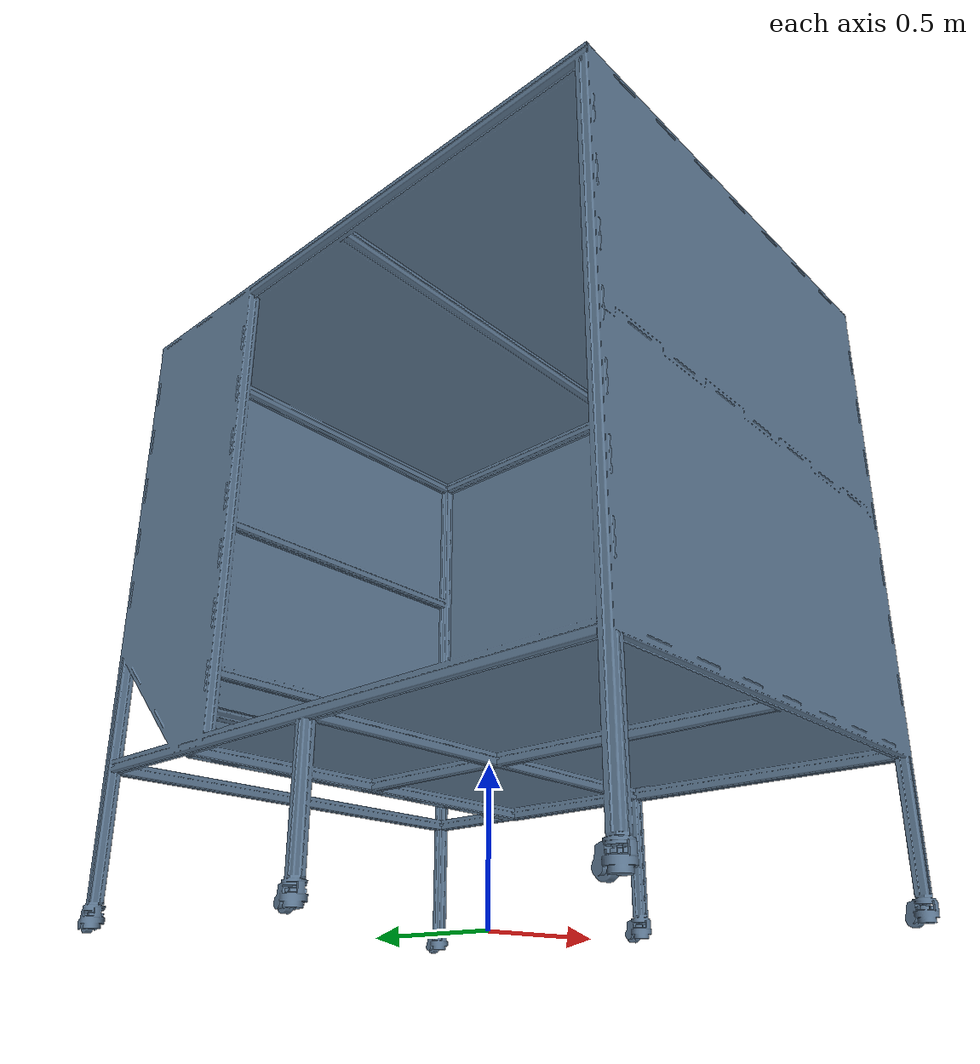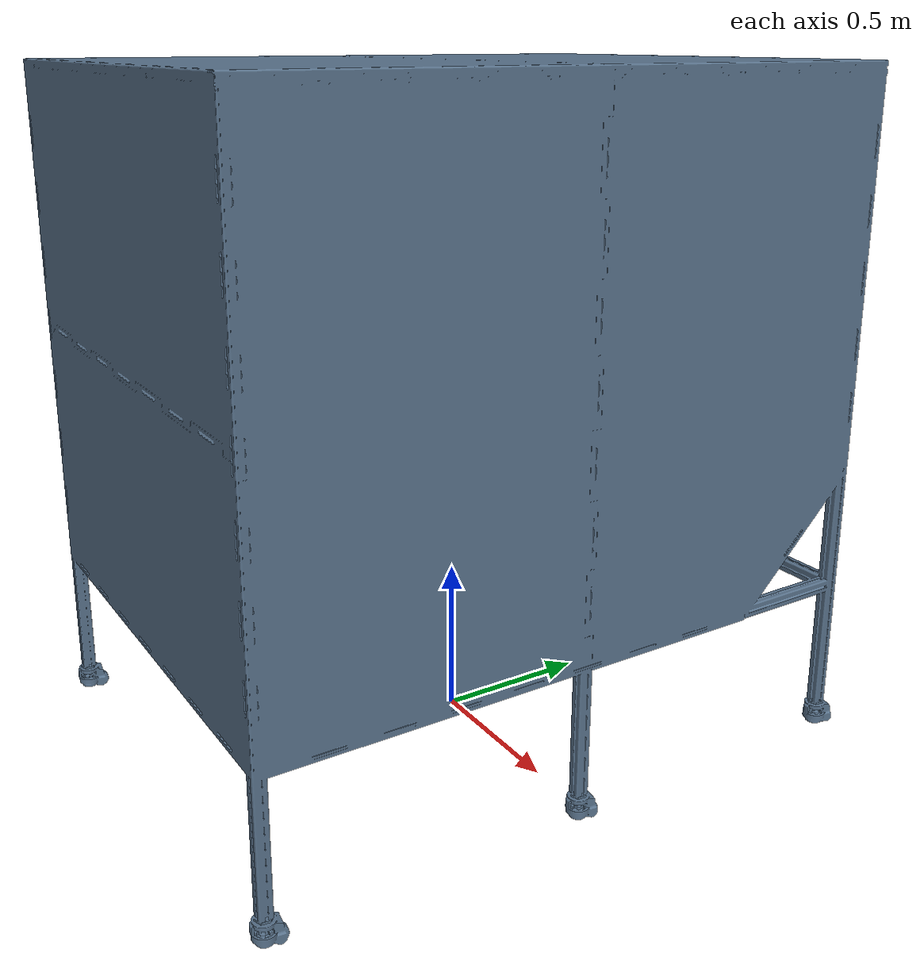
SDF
<?xml version="1.0"?>
<sdf version="1.6">
  <model name="airport_container_real">
    <static>true</static>
    <link name="container_link">
      <pose>0 0 0 0 0 0</pose>
      <visual name="visual">
        <geometry>
          <mesh>
            <uri>model://airport_container_real/meshes/container_visual.stl</uri>
            <scale>1 1 1</scale>
          </mesh>
        </geometry>
        <material>
          <ambient>0.25 0.35 0.45 1</ambient>
          <diffuse>0.35 0.45 0.55 1</diffuse>
        </material>
      </visual>
      <!-- Physics mesh is a 2k-face decimation of container_collision.stl.
           Visual stays high-res. MoveIt still loads the 8k collision STL. -->
      <collision name="collision_mesh">
        <geometry>
          <mesh>
            <uri>model://airport_container_real/meshes/container_collision_physics.stl</uri>
            <scale>1 1 1</scale>
          </mesh>
        </geometry>
        <surface>
          <friction>
            <ode>
              <mu>0.6</mu>
              <mu2>0.6</mu2>
            </ode>
          </friction>
        </surface>
      </collision>
    </link>
  </model>
</sdf>
